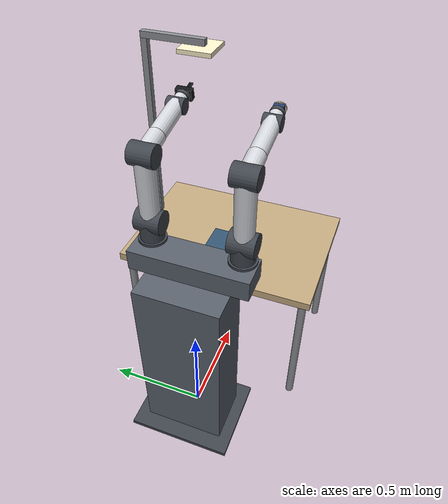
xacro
<?xml version="1.0"?>
<robot xmlns:xacro="http://www.ros.org/wiki/xacro" name="dual_arm_inspection_cell">
  <xacro:arg name="with_cell" default="true"/>
  <xacro:property name="PI" value="3.141592653589793"/>

  <!-- 腕の寸法（kinematics.ArmGeometry） -->
  <xacro:property name="d1" value="0.10"/>
  <xacro:property name="a2" value="0.32"/>
  <xacro:property name="d4a" value="0.12"/>
  <xacro:property name="d4b" value="0.20"/>
  <xacro:property name="d6a" value="0.05"/>
  <xacro:property name="left_tool" value="0.085"/>
  <xacro:property name="right_tool" value="0.05"/>
  <xacro:property name="vel" value="1.5"/>

  <material name="steel"><color rgba="0.82 0.83 0.85 1"/></material>
  <material name="joint_gray"><color rgba="0.25 0.27 0.30 1"/></material>
  <material name="body"><color rgba="0.35 0.38 0.42 1"/></material>
  <material name="black"><color rgba="0.08 0.08 0.09 1"/></material>
  <material name="camera_blue"><color rgba="0.15 0.25 0.45 1"/></material>
  <material name="lamp"><color rgba="1.0 0.95 0.80 1"/></material>
  <material name="wood"><color rgba="0.76 0.66 0.50 1"/></material>
  <material name="tray"><color rgba="0.20 0.33 0.45 1"/></material>
  <material name="frame"><color rgba="0.55 0.56 0.58 1"/></material>

  <xacro:macro name="inertia" params="m">
    <inertial>
      <mass value="${m}"/>
      <inertia ixx="${0.002*m}" ixy="0" ixz="0" iyy="${0.002*m}" iyz="0" izz="${0.002*m}"/>
    </inertial>
  </xacro:macro>

  <!-- 円柱（向き: z に沿う / y に沿う） -->
  <xacro:macro name="cyl_z" params="r l z mat">
    <visual>
      <origin xyz="0 0 ${z}" rpy="0 0 0"/>
      <geometry><cylinder radius="${r}" length="${l}"/></geometry>
      <material name="${mat}"/>
    </visual>
  </xacro:macro>
  <xacro:macro name="cyl_y" params="r l mat">
    <visual>
      <origin xyz="0 0 0" rpy="${PI/2} 0 0"/>
      <geometry><cylinder radius="${r}" length="${l}"/></geometry>
      <material name="${mat}"/>
    </visual>
  </xacro:macro>
  <xacro:macro name="box_at" params="x y z sx sy sz mat">
    <visual>
      <origin xyz="${x} ${y} ${z}" rpy="0 0 0"/>
      <geometry><box size="${sx} ${sy} ${sz}"/></geometry>
      <material name="${mat}"/>
    </visual>
  </xacro:macro>

  <!-- 6 軸の腕。関節 n の上下限は lo{n} / hi{n}（kinematics.LOWER / UPPER） -->
  <xacro:macro name="arm" params="p x y z">
    <link name="${p}_base">
      <xacro:cyl_z r="0.065" l="0.012" z="0.006" mat="joint_gray"/>
    </link>
    <joint name="${p}_base_joint" type="fixed">
      <parent link="torso_link"/><child link="${p}_base"/>
      <origin xyz="${x} ${y} ${z}" rpy="0 0 0"/>
    </joint>

    <link name="${p}_link1">
      <xacro:cyl_z r="0.055" l="${d1}" z="${d1/2}" mat="joint_gray"/>
      <xacro:inertia m="2.0"/>
    </link>
    <joint name="${p}_joint1" type="revolute">
      <parent link="${p}_base"/><child link="${p}_link1"/>
      <origin xyz="0 0 0" rpy="0 0 0"/><axis xyz="0 0 1"/>
      <limit lower="-2.8" upper="2.8" effort="80" velocity="${vel}"/>
    </joint>

    <link name="${p}_link2">
      <xacro:cyl_y r="0.055" l="0.12" mat="joint_gray"/>
      <xacro:cyl_z r="0.045" l="${a2}" z="${a2/2}" mat="steel"/>
      <xacro:inertia m="2.0"/>
    </link>
    <joint name="${p}_joint2" type="revolute">
      <parent link="${p}_link1"/><child link="${p}_link2"/>
      <origin xyz="0 0 ${d1}" rpy="0 0 0"/><axis xyz="0 1 0"/>
      <limit lower="-1.2" upper="2.2" effort="80" velocity="${vel}"/>
    </joint>

    <link name="${p}_link3">
      <xacro:cyl_y r="0.05" l="0.11" mat="joint_gray"/>
      <xacro:cyl_z r="0.04" l="${d4a}" z="${d4a/2}" mat="steel"/>
      <xacro:inertia m="1.2"/>
    </link>
    <joint name="${p}_joint3" type="revolute">
      <parent link="${p}_link2"/><child link="${p}_link3"/>
      <origin xyz="0 0 ${a2}" rpy="0 0 0"/><axis xyz="0 1 0"/>
      <limit lower="0.05" upper="2.7" effort="50" velocity="${vel}"/>
    </joint>

    <link name="${p}_link4">
      <xacro:cyl_z r="0.038" l="${d4b}" z="${d4b/2}" mat="steel"/>
      <xacro:inertia m="0.8"/>
    </link>
    <joint name="${p}_joint4" type="revolute">
      <parent link="${p}_link3"/><child link="${p}_link4"/>
      <origin xyz="0 0 ${d4a}" rpy="0 0 0"/><axis xyz="0 0 1"/>
      <limit lower="-2.9" upper="2.9" effort="20" velocity="${vel}"/>
    </joint>

    <link name="${p}_link5">
      <xacro:cyl_y r="0.035" l="0.08" mat="joint_gray"/>
      <xacro:cyl_z r="0.03" l="${d6a}" z="${d6a/2}" mat="steel"/>
      <xacro:inertia m="0.4"/>
    </link>
    <joint name="${p}_joint5" type="revolute">
      <parent link="${p}_link4"/><child link="${p}_link5"/>
      <origin xyz="0 0 ${d4b}" rpy="0 0 0"/><axis xyz="0 1 0"/>
      <limit lower="-2.1" upper="2.1" effort="20" velocity="${vel}"/>
    </joint>

    <link name="${p}_link6">
      <xacro:cyl_z r="0.032" l="0.02" z="0.01" mat="joint_gray"/>
      <xacro:inertia m="0.2"/>
    </link>
    <joint name="${p}_joint6" type="revolute">
      <parent link="${p}_link5"/><child link="${p}_link6"/>
      <origin xyz="0 0 ${d6a}" rpy="0 0 0"/><axis xyz="0 0 1"/>
      <limit lower="-2.9" upper="2.9" effort="10" velocity="${vel}"/>
    </joint>
  </xacro:macro>

  <!-- ===== 床と胴体 ===== -->
  <link name="world"/>
  <link name="torso_link">
    <xacro:box_at x="-0.06" y="0" z="0.01" sx="0.42" sy="0.52" sz="0.02" mat="joint_gray"/>
    <xacro:box_at x="-0.06" y="0" z="0.475" sx="0.26" sy="0.40" sz="0.95" mat="body"/>
    <xacro:box_at x="0.02" y="0" z="1.00" sx="0.16" sy="0.56" sz="0.10" mat="body"/>
  </link>
  <joint name="torso_joint" type="fixed">
    <parent link="world"/><child link="torso_link"/>
    <origin xyz="0 0 0" rpy="0 0 0"/>
  </joint>

  <xacro:arm p="l" x="0.06" y="0.21" z="1.05"/>
  <xacro:arm p="r" x="0.06" y="-0.21" z="1.05"/>

  <!-- ===== 左手: グリッパ（指は y の向きに開く。l_tcp は指先より 2.5cm 内側） ===== -->
  <link name="l_palm">
    <xacro:box_at x="0" y="0" z="0.015" sx="0.05" sy="0.075" sz="0.03" mat="black"/>
    <xacro:inertia m="0.3"/>
  </link>
  <joint name="l_palm_joint" type="fixed">
    <parent link="l_link6"/><child link="l_palm"/>
    <origin xyz="0 0 0.02" rpy="0 0 0"/>
  </joint>
  <link name="l_finger_a">
    <xacro:box_at x="0" y="0.004" z="0.03" sx="0.008" sy="0.008" sz="0.06" mat="black"/>
    <xacro:inertia m="0.05"/>
  </link>
  <joint name="l_finger_a_joint" type="prismatic">
    <parent link="l_palm"/><child link="l_finger_a"/>
    <origin xyz="0 0 0.03" rpy="0 0 0"/><axis xyz="0 1 0"/>
    <limit lower="0.0" upper="0.025" effort="20" velocity="0.1"/>
  </joint>
  <link name="l_finger_b">
    <xacro:box_at x="0" y="-0.004" z="0.03" sx="0.008" sy="0.008" sz="0.06" mat="black"/>
    <xacro:inertia m="0.05"/>
  </link>
  <joint name="l_finger_b_joint" type="prismatic">
    <parent link="l_palm"/><child link="l_finger_b"/>
    <origin xyz="0 0 0.03" rpy="0 0 0"/><axis xyz="0 -1 0"/>
    <limit lower="0.0" upper="0.025" effort="20" velocity="0.1"/>
  </joint>
  <link name="l_tcp"/>
  <joint name="l_tcp_joint" type="fixed">
    <parent link="l_link6"/><child link="l_tcp"/>
    <origin xyz="0 0 ${left_tool}" rpy="0 0 0"/>
  </joint>

  <!-- ===== 右手: 手首カメラ（z が見る向き。光学座標: x 右・y 下・z 前） ===== -->
  <link name="r_camera_link">
    <xacro:box_at x="0" y="0" z="0.015" sx="0.045" sy="0.045" sz="0.03" mat="camera_blue"/>
    <xacro:cyl_z r="0.03" l="0.005" z="0.0275" mat="lamp"/>
    <!-- レンズは光学中心（r_camera_optical_frame、r_link6 から 0.05）で終わる。前に出すと Isaac Sim のカメラがレンズの中から写す -->
    <xacro:cyl_z r="0.012" l="0.02" z="0.02" mat="black"/>
    <xacro:inertia m="0.2"/>
  </link>
  <joint name="r_camera_joint" type="fixed">
    <parent link="r_link6"/><child link="r_camera_link"/>
    <origin xyz="0 0 0.02" rpy="0 0 0"/>
  </joint>
  <link name="r_camera_optical_frame"/>
  <joint name="r_camera_optical_joint" type="fixed">
    <parent link="r_link6"/><child link="r_camera_optical_frame"/>
    <origin xyz="0 0 ${right_tool}" rpy="0 0 0"/>
  </joint>

  <!-- ===== セル: 机・部品トレイ・照明 ===== -->
  <xacro:if value="$(arg with_cell)">
    <link name="table_link">
      <xacro:box_at x="0.55" y="0" z="0.73" sx="0.70" sy="1.00" sz="0.04" mat="wood"/>
      <visual><origin xyz="0.86 0.46 0.355"/><geometry><cylinder radius="0.02" length="0.71"/></geometry><material name="frame"/></visual>
      <visual><origin xyz="0.86 -0.46 0.355"/><geometry><cylinder radius="0.02" length="0.71"/></geometry><material name="frame"/></visual>
      <visual><origin xyz="0.24 0.46 0.355"/><geometry><cylinder radius="0.02" length="0.71"/></geometry><material name="frame"/></visual>
      <visual><origin xyz="0.24 -0.46 0.355"/><geometry><cylinder radius="0.02" length="0.71"/></geometry><material name="frame"/></visual>
    </link>
    <joint name="table_joint" type="fixed">
      <parent link="world"/><child link="table_link"/>
      <origin xyz="0 0 0" rpy="0 0 0"/>
    </joint>
    <link name="tray_link">
      <xacro:box_at x="0.44" y="0" z="0.76" sx="0.21" sy="0.21" sz="0.02" mat="tray"/>
    </link>
    <joint name="tray_joint" type="fixed">
      <parent link="world"/><child link="tray_link"/>
      <origin xyz="0 0 0" rpy="0 0 0"/>
    </joint>
    <link name="light_link">
      <!-- 机の左奥に柱を立て、腕が届かない高さ（1.68m より上）から照らす。cell.LIGHT_BOXES と同じ -->
      <xacro:box_at x="0.62" y="0.47" z="1.225" sx="0.03" sy="0.03" sz="0.95" mat="frame"/>
      <xacro:box_at x="0.62" y="0.33" z="1.715" sx="0.03" sy="0.31" sz="0.03" mat="frame"/>
      <xacro:box_at x="0.62" y="0.20" z="1.69" sx="0.16" sy="0.16" sz="0.02" mat="lamp"/>
    </link>
    <joint name="light_joint" type="fixed">
      <parent link="world"/><child link="light_link"/>
      <origin xyz="0 0 0" rpy="0 0 0"/>
    </joint>
  </xacro:if>
</robot>
